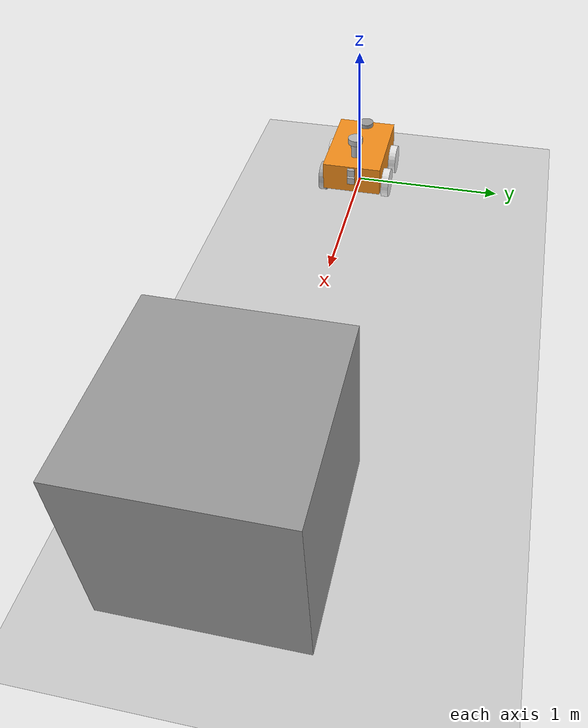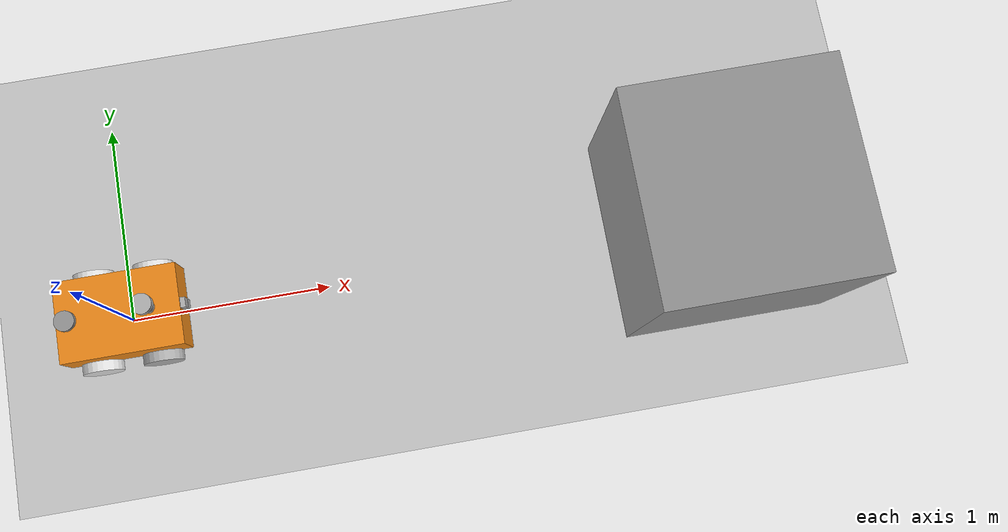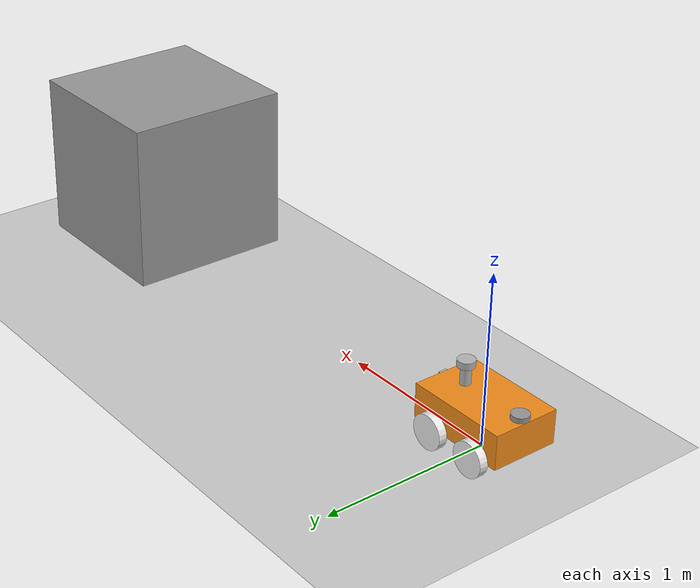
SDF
<sdf version="1.7">
 <world name="default">
  <light name="sun" type="directional">
   <pose>0 0 10 0 -0 0</pose>
   <diffuse>0.8 0.8 0.8 1</diffuse>
   <specular>0.2 0.2 0.2 1</specular>
   <attenuation>
    <range>1000</range>
    <constant>0.9</constant>
    <linear>0.01</linear>
    <quadratic>0.001</quadratic>
   </attenuation>
   <direction>-0.5 0.1 -0.9</direction>
   <spot><inner_angle>0</inner_angle><outer_angle>0</outer_angle><falloff>0</falloff></spot>
  </light>
  <model name="ground_plane">
   <static>1</static>
   <link name="link">
    <collision name="collision">
     <geometry><plane><normal>0 0 1</normal><size>100 100</size></plane></geometry>
     <surface>
      <contact><collide_bitmask>65535</collide_bitmask></contact>
      <friction><ode><mu>100</mu><mu2>50</mu2></ode></friction>
     </surface>
    </collision>
    <visual name="visual">
     <cast_shadows>0</cast_shadows>
     <geometry><plane><normal>0 0 1</normal><size>100 100</size></plane></geometry>
     <material>
      <script><uri>file://media/materials/scripts/gazebo.material</uri><name>Gazebo/Grey</name></script>
     </material>
    </visual>
   </link>
  </model>
  <gravity>0 0 -9.8</gravity>
  <magnetic_field>6e-06 2.3e-05 -4.2e-05</magnetic_field>
  <atmosphere type="adiabatic"/>
  <physics type="ode">
   <max_step_size>0.001</max_step_size>
   <real_time_factor>1</real_time_factor>
   <real_time_update_rate>1000</real_time_update_rate>
  </physics>
  <scene><ambient>0.4 0.4 0.4 1</ambient><background>0.7 0.7 0.7 1</background><shadows>1</shadows></scene>
  <audio><device>default</device></audio>
  <spherical_coordinates>
   <surface_model>EARTH_WGS84</surface_model>
   <latitude_deg>0</latitude_deg>
   <longitude_deg>0</longitude_deg>
   <elevation>0</elevation>
   <heading_deg>0</heading_deg>
  </spherical_coordinates>
  <model name="my_robot">
   <link name="base_footprint">
    <inertial>
     <pose>0.004175 0 0.155702 0 -0 0</pose>
     <mass>10.54</mass>
     <inertia>
      <ixx>0.180019</ixx>
      <ixy>0</ixy>
      <ixz>-0.00883411</ixz>
      <iyy>0.373902</iyy>
      <iyz>0</iyz>
      <izz>0.461031</izz>
     </inertia>
    </inertial>
    <collision name="base_footprint_fixed_joint_lump__base_link_collision">
     <pose>0 0 0.15 0 -0 0</pose>
     <geometry><box><size>0.6 0.4 0.2</size></box></geometry>
    </collision>
    <collision name="base_footprint_fixed_joint_lump__gps_link_collision_1">
     <pose>-0.25 0 0.26 0 -0 0</pose>
     <geometry><cylinder><length>0.04</length><radius>0.05</radius></cylinder></geometry>
    </collision>
    <collision name="base_footprint_fixed_joint_lump__imu_link_collision_2">
     <pose>0 0 0.05 0 -0 0</pose>
     <geometry><cylinder><length>0.04</length><radius>0.05</radius></cylinder></geometry>
    </collision>
    <collision name="base_footprint_fixed_joint_lump__lidar_stand_collision_3">
     <pose>0.15 0 0.3 0 -0 0</pose>
     <geometry><cylinder><length>0.15</length><radius>0.03</radius></cylinder></geometry>
    </collision>
    <collision name="base_footprint_fixed_joint_lump__laser_frame_collision_4">
     <pose>0.15 0 0.375 0 -0 0</pose>
     <geometry><cylinder><length>0.04</length><radius>0.05</radius></cylinder></geometry>
    </collision>
    <visual name="base_footprint_fixed_joint_lump__base_link_visual">
     <pose>0 0 0.15 0 -0 0</pose>
     <geometry><box><size>0.6 0.4 0.2</size></box></geometry>
     <material>
      <script><name>Gazebo/Orange</name><uri>file://media/materials/scripts/gazebo.material</uri></script>
     </material>
    </visual>
    <visual name="base_footprint_fixed_joint_lump__camera_link_visual_1">
     <pose>0.3 0 0.15 0 -0 0</pose>
     <geometry><box><size>0.05 0.05 0.05</size></box></geometry>
    </visual>
    <visual name="base_footprint_fixed_joint_lump__gps_link_visual_2">
     <pose>-0.25 0 0.26 0 -0 0</pose>
     <geometry><cylinder><length>0.04</length><radius>0.05</radius></cylinder></geometry>
     <material>
      <script><name>Gazebo/Grey</name><uri>file://media/materials/scripts/gazebo.material</uri></script>
     </material>
    </visual>
    <visual name="base_footprint_fixed_joint_lump__imu_link_visual_3">
     <pose>0 0 0.05 0 -0 0</pose>
     <geometry><cylinder><length>0.04</length><radius>0.05</radius></cylinder></geometry>
     <material>
      <script><name>Gazebo/Grey</name><uri>file://media/materials/scripts/gazebo.material</uri></script>
     </material>
    </visual>
    <visual name="base_footprint_fixed_joint_lump__lidar_stand_visual_4">
     <pose>0.15 0 0.3 0 -0 0</pose>
     <geometry><cylinder><length>0.15</length><radius>0.03</radius></cylinder></geometry>
    </visual>
    <visual name="base_footprint_fixed_joint_lump__laser_frame_visual_5">
     <pose>0.15 0 0.375 0 -0 0</pose>
     <geometry><cylinder><length>0.04</length><radius>0.05</radius></cylinder></geometry>
    </visual>
    <visual name="base_footprint_fixed_joint_lump__stereo_link_visual_6">
     <pose>0.3 0 0.215 0 -0 0</pose>
     <geometry><box><size>0.05 0.05 0.05</size></box></geometry>
    </visual>
    <sensor name="gps_sensor" type="gps">
     <always_on>1</always_on>
     <update_rate>10</update_rate>
     <plugin filename="libgazebo_ros_gps_sensor.so" name="gps_controller">
      <ros><remapping>gps_controller/out:=gps</remapping></ros>
      <frame_name>gps_joint</frame_name>
      <horizontal_position_std_dev>0.0</horizontal_position_std_dev>
      <vertical_position_std_dev>0.0</vertical_position_std_dev>
     </plugin>
     <pose>-0.25 0 0.26 0 -0 0</pose>
    </sensor>
    <sensor name="imu_sensor" type="imu">
     <always_on>1</always_on>
     <update_rate>10</update_rate>
     <plugin filename="libgazebo_ros_imu_sensor.so" name="imu_controller">
      <ros><remapping>imu_controller/out:=imu</remapping></ros>
      <frame_name>imu_link</frame_name>
     </plugin>
     <pose>0 0 0.05 0 -0 0</pose>
    </sensor>
    <sensor name="lidar" type="ray">
     <always_on>1</always_on>
     <visualize>0</visualize>
     <update_rate>5</update_rate>
     <ray>
      <scan>
       <horizontal>
        <samples>360</samples>
        <resolution>1</resolution>
        <min_angle>0</min_angle>
        <max_angle>6.28</max_angle>
        <visualize>0</visualize>
       </horizontal>
       <vertical><samples>1</samples><min_angle>0</min_angle><max_angle>0</max_angle></vertical>
      </scan>
      <range><min>0.1</min><max>20</max><resolution>0.015</resolution></range>
      <noise><type>gaussian</type><mean>0</mean><stddev>0.01</stddev></noise>
     </ray>
     <plugin filename="libgazebo_ros_ray_sensor.so" name="scan">
      <ros><remapping>~/out:=scan</remapping></ros>
      <output_type>sensor_msgs/LaserScan</output_type>
      <frame_name>laser_frame</frame_name>
     </plugin>
     <pose>0.15 0 0.375 0 -0 0</pose>
    </sensor>
    <sensor name="camera" type="depth">
     <always_on>1</always_on>
     <update_rate>30</update_rate>
     <visualize>1</visualize>
     <camera name="realsense_depth_camera">
      <horizontal_fov>1.39626</horizontal_fov>
      <image><width>640</width><height>480</height><format>R8G8B8</format></image>
      <clip><near>0.01</near><far>20</far></clip>
      <depth_noise><mean>0.0</mean><stddev>0.005</stddev></depth_noise>
     </camera>
     <plugin filename="libgazebo_ros_camera.so" name="intel_realsense_d430_depth_driver">
      <ros>
       <namespace>d430</namespace>
       <remapping>camera/image_raw:=color/image_raw</remapping>
       <remapping>camera/depth/image_raw:=depth/image_rect_raw</remapping>
       <remapping>camera/camera_info:=camera_info</remapping>
       <remapping>camera/depth/camera_info:=depth/camera_info</remapping>
       <remapping>camera/points:=depth/points</remapping>
      </ros>
      <camera_name>camera</camera_name>
      <frame_name>stereo_link_optical</frame_name>
      <hack_baseline>0.07</hack_baseline>
      <min_depth>0.01</min_depth>
      <max_depth>20.0</max_depth>
     </plugin>
     <pose>0.3 0 0.215 0 -0 0</pose>
    </sensor>
   </link>
   <joint name="base_left_wheel_back_joint" type="revolute">
    <pose relative_to="base_footprint">-0.15 0.225 0.05 0 -0 0</pose>
    <parent>base_footprint</parent>
    <child>left_wheel_back_link</child>
    <axis>
     <xyz>0 1 0</xyz>
     <limit><lower>-1e+16</lower><upper>1e+16</upper></limit>
     <dynamics>
      <damping>0.1</damping>
      <friction>0.5</friction>
      <spring_reference>0</spring_reference>
      <spring_stiffness>0</spring_stiffness>
     </dynamics>
    </axis>
   </joint>
   <link name="left_wheel_back_link">
    <pose relative_to="base_left_wheel_back_joint">0 0 0 0 -0 0</pose>
    <inertial>
     <pose>0 0 0 1.57 -0 0</pose>
     <mass>10</mass>
     <inertia><ixx>0.0270833</ixx><ixy>0</ixy><ixz>0</ixz><iyy>0.0270833</iyy><iyz>0</iyz><izz>0.05</izz></inertia>
    </inertial>
    <collision name="left_wheel_back_link_collision">
     <pose>0 0 0 1.57 -0 0</pose>
     <geometry><cylinder><length>0.05</length><radius>0.1</radius></cylinder></geometry>
    </collision>
    <visual name="left_wheel_back_link_visual">
     <pose>0 0 0 1.57 -0 0</pose>
     <geometry><cylinder><length>0.05</length><radius>0.1</radius></cylinder></geometry>
     <material>
      <script><name>Gazebo/White</name><uri>file://media/materials/scripts/gazebo.material</uri></script>
     </material>
    </visual>
   </link>
   <joint name="base_left_wheel_front_joint" type="revolute">
    <pose relative_to="base_footprint">0.15 0.225 0.05 0 -0 0</pose>
    <parent>base_footprint</parent>
    <child>left_wheel_front_link</child>
    <axis>
     <xyz>0 1 0</xyz>
     <limit><lower>-1e+16</lower><upper>1e+16</upper></limit>
     <dynamics>
      <damping>0.1</damping>
      <friction>0.5</friction>
      <spring_reference>0</spring_reference>
      <spring_stiffness>0</spring_stiffness>
     </dynamics>
    </axis>
   </joint>
   <link name="left_wheel_front_link">
    <pose relative_to="base_left_wheel_front_joint">0 0 0 0 -0 0</pose>
    <inertial>
     <pose>0 0 0 1.57 -0 0</pose>
     <mass>10</mass>
     <inertia><ixx>0.0270833</ixx><ixy>0</ixy><ixz>0</ixz><iyy>0.0270833</iyy><iyz>0</iyz><izz>0.05</izz></inertia>
    </inertial>
    <collision name="left_wheel_front_link_collision">
     <pose>0 0 0 1.57 -0 0</pose>
     <geometry><cylinder><length>0.05</length><radius>0.1</radius></cylinder></geometry>
    </collision>
    <visual name="left_wheel_front_link_visual">
     <pose>0 0 0 1.57 -0 0</pose>
     <geometry><cylinder><length>0.05</length><radius>0.1</radius></cylinder></geometry>
     <material>
      <script><name>Gazebo/White</name><uri>file://media/materials/scripts/gazebo.material</uri></script>
     </material>
    </visual>
   </link>
   <joint name="base_right_wheel_back_joint" type="revolute">
    <pose relative_to="base_footprint">-0.15 -0.225 0.05 0 -0 0</pose>
    <parent>base_footprint</parent>
    <child>right_wheel_back_link</child>
    <axis>
     <xyz>0 1 0</xyz>
     <limit><lower>-1e+16</lower><upper>1e+16</upper></limit>
     <dynamics>
      <damping>0.1</damping>
      <friction>0.5</friction>
      <spring_reference>0</spring_reference>
      <spring_stiffness>0</spring_stiffness>
     </dynamics>
    </axis>
   </joint>
   <link name="right_wheel_back_link">
    <pose relative_to="base_right_wheel_back_joint">0 0 0 0 -0 0</pose>
    <inertial>
     <pose>0 0 0 -1.57 0 0</pose>
     <mass>10</mass>
     <inertia><ixx>0.0270833</ixx><ixy>0</ixy><ixz>0</ixz><iyy>0.0270833</iyy><iyz>0</iyz><izz>0.05</izz></inertia>
    </inertial>
    <collision name="right_wheel_back_link_collision">
     <pose>0 0 0 -1.57 0 0</pose>
     <geometry><cylinder><length>0.05</length><radius>0.1</radius></cylinder></geometry>
    </collision>
    <visual name="right_wheel_back_link_visual">
     <pose>0 0 0 -1.57 0 0</pose>
     <geometry><cylinder><length>0.05</length><radius>0.1</radius></cylinder></geometry>
     <material>
      <script><name>Gazebo/White</name><uri>file://media/materials/scripts/gazebo.material</uri></script>
     </material>
    </visual>
   </link>
   <joint name="base_right_wheel_front_joint" type="revolute">
    <pose relative_to="base_footprint">0.15 -0.225 0.05 0 -0 0</pose>
    <parent>base_footprint</parent>
    <child>right_wheel_front_link</child>
    <axis>
     <xyz>0 1 0</xyz>
     <limit><lower>-1e+16</lower><upper>1e+16</upper></limit>
     <dynamics>
      <damping>0.1</damping>
      <friction>0.5</friction>
      <spring_reference>0</spring_reference>
      <spring_stiffness>0</spring_stiffness>
     </dynamics>
    </axis>
   </joint>
   <link name="right_wheel_front_link">
    <pose relative_to="base_right_wheel_front_joint">0 0 0 0 -0 0</pose>
    <inertial>
     <pose>0 0 0 -1.57 0 0</pose>
     <mass>10</mass>
     <inertia><ixx>0.0270833</ixx><ixy>0</ixy><ixz>0</ixz><iyy>0.0270833</iyy><iyz>0</iyz><izz>0.05</izz></inertia>
    </inertial>
    <collision name="right_wheel_front_link_collision">
     <pose>0 0 0 -1.57 0 0</pose>
     <geometry><cylinder><length>0.05</length><radius>0.1</radius></cylinder></geometry>
    </collision>
    <visual name="right_wheel_front_link_visual">
     <pose>0 0 0 -1.57 0 0</pose>
     <geometry><cylinder><length>0.05</length><radius>0.1</radius></cylinder></geometry>
    </visual>
   </link>
   <plugin filename="libgazebo_ros_diff_drive.so" name="diff_drive">
    <num_wheel_pairs>2</num_wheel_pairs>
    <left_joint>base_left_wheel_front_joint</left_joint>
    <right_joint>base_right_wheel_front_joint</right_joint>
    <left_joint>base_left_wheel_back_joint</left_joint>
    <right_joint>base_right_wheel_back_joint</right_joint>
    <wheel_separation>0.45</wheel_separation>
    <wheel_diameter>0.2</wheel_diameter>
    <max_wheel_torque>10</max_wheel_torque>
    <max_wheel_acceleration>1.0</max_wheel_acceleration>
    <publish_odom>1</publish_odom>
    <publish_odom_tf>1</publish_odom_tf>
    <publish_wheel_tf>0</publish_wheel_tf>
    <odometry_frame>odom</odometry_frame>
    <robot_base_frame>base_footprint</robot_base_frame>
   </plugin>
   <static>0</static>
   <plugin filename="libgazebo_ros_joint_state_publisher.so" name="gazebo_ros_joint_state_publisher">
    <update_rate>10</update_rate>
    <joint_name>base_left_wheel_front_joint</joint_name>
    <joint_name>base_left_wheel_back_joint</joint_name>
    <joint_name>base_right_wheel_front_joint</joint_name>
    <joint_name>base_right_wheel_back_joint</joint_name>
   </plugin>
   <pose>-5.6e-05 -2e-06 0.05002 0 -0 6e-06</pose>
  </model>
  <model name="unit_box">
   <pose>2.93941 -0.010716 0.5 0 -0 0</pose>
   <link name="link">
    <inertial>
     <mass>1</mass>
     <inertia>
      <ixx>0.166667</ixx>
      <ixy>0</ixy>
      <ixz>0</ixz>
      <iyy>0.166667</iyy>
      <iyz>0</iyz>
      <izz>0.166667</izz>
     </inertia>
    </inertial>
    <collision name="collision"><geometry><box><size>1 1 1</size></box></geometry></collision>
    <visual name="visual">
     <geometry><box><size>1 1 1</size></box></geometry>
     <material>
      <script><name>Gazebo/Grey</name><uri>file://media/materials/scripts/gazebo.material</uri></script>
     </material>
    </visual>
   </link>
  </model>
 </world>
</sdf>
